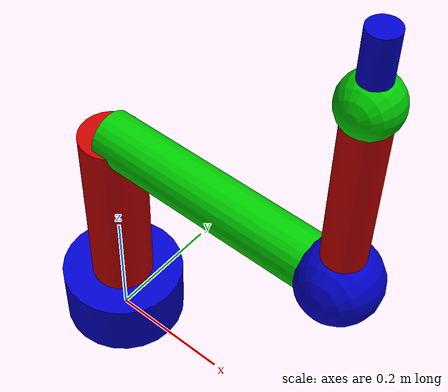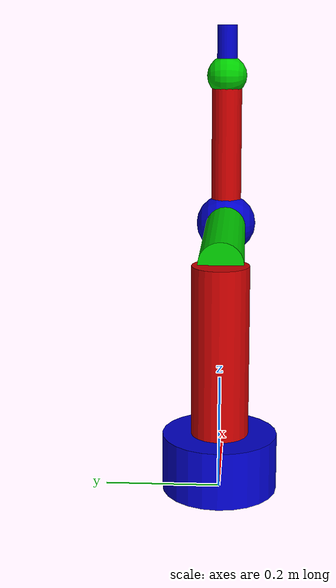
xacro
<?xml version="1.0"?>
<!--
  6_axis_arm.urdf.xacro

  6轴机械臂的机器人描述文件 (Xacro宏格式)。
-->
<robot name="6_axis_arm" xmlns:xacro="http://www.ros.org/wiki/xacro">

  <!--               材质              -->
  <material name="blue">
    <color rgba="0 0 0.8 1"/>
  </material>
  <material name="red">
    <color rgba="0.8 0 0 1"/>
  </material>
  <material name="green">
    <color rgba="0 0.8 0 1"/>
  </material>

  <!-- 用于修复 KDL 根节点惯性警告的虚拟连杆 -->
  <link name="world"/>
  <joint name="world_fixed" type="fixed">
    <parent link="world"/>
    <child link="base_link"/>
  </joint>

  <!--               连杆              -->

  <link name="base_link">
    <visual>
      <geometry>
        <cylinder length="0.1" radius="0.1"/>
      </geometry>
      <material name="blue"/>
      <origin xyz="0 0 0.05" rpy="0 0 0"/>
    </visual>
    <collision>
      <geometry>
        <cylinder length="0.1" radius="0.1"/>
      </geometry>
      <origin xyz="0 0 0.05" rpy="0 0 0"/>
    </collision>
    <inertial>
      <mass value="5.0"/>
      <origin xyz="0 0 0.05" rpy="0 0 0"/>
      <inertia ixx="0.016" ixy="0.0" ixz="0.0" iyy="0.016" iyz="0.0" izz="0.025"/>
    </inertial>
  </link>

  <link name="link_1">
    <visual>
      <geometry>
        <cylinder length="0.3" radius="0.05"/>
      </geometry>
      <material name="red"/>
      <origin xyz="0 0 0.15" rpy="0 0 0"/>
    </visual>
    <collision>
      <geometry>
        <cylinder length="0.3" radius="0.05"/>
      </geometry>
      <origin xyz="0 0 0.15" rpy="0 0 0"/>
    </collision>
    <inertial>
      <mass value="2.0"/>
      <origin xyz="0 0 0.15" rpy="0 0 0"/>
      <inertia ixx="0.016" ixy="0.0" ixz="0.0" iyy="0.016" iyz="0.0" izz="0.0025"/>
    </inertial>
  </link>

  <link name="link_2">
    <visual>
      <geometry>
        <cylinder length="0.4" radius="0.04"/>
      </geometry>
      <material name="green"/>
      <origin xyz="0.2 0 0" rpy="0 1.5708 0"/>
    </visual>
    <collision>
      <geometry>
        <cylinder length="0.4" radius="0.04"/>
      </geometry>
      <origin xyz="0.2 0 0" rpy="0 1.5708 0"/>
    </collision>
    <inertial>
      <mass value="1.5"/>
      <origin xyz="0.2 0 0" rpy="0 1.5708 0"/>
      <inertia ixx="0.0012" ixy="0.0" ixz="0.0" iyy="0.02" iyz="0.0" izz="0.02"/>
    </inertial>
  </link>

  <link name="link_3">
    <visual>
      <geometry>
        <sphere radius="0.06"/>
      </geometry>
      <material name="blue"/>
      <origin xyz="0 0 0" rpy="0 0 0"/>
    </visual>
    <collision>
      <geometry>
        <sphere radius="0.06"/>
      </geometry>
      <origin xyz="0 0 0" rpy="0 0 0"/>
    </collision>
    <inertial>
      <mass value="1.0"/>
      <origin xyz="0 0 0" rpy="0 0 0"/>
      <inertia ixx="0.0014" ixy="0.0" ixz="0.0" iyy="0.0014" iyz="0.0" izz="0.0014"/>
    </inertial>
  </link>

  <link name="link_4">
    <visual>
      <geometry>
        <cylinder length="0.3" radius="0.03"/>
      </geometry>
      <material name="red"/>
      <origin xyz="0 0 0.15" rpy="0 0 0"/>
    </visual>
    <collision>
      <geometry>
        <cylinder length="0.3" radius="0.03"/>
      </geometry>
      <origin xyz="0 0 0.15" rpy="0 0 0"/>
    </collision>
    <inertial>
      <mass value="0.8"/>
      <origin xyz="0 0 0.15" rpy="0 0 0"/>
      <inertia ixx="0.006" ixy="0.0" ixz="0.0" iyy="0.006" iyz="0.0" izz="0.0003"/>
    </inertial>
  </link>

  <link name="link_5">
    <visual>
      <geometry>
        <sphere radius="0.04"/>
      </geometry>
      <material name="green"/>
      <origin xyz="0 0 0" rpy="0 0 0"/>
    </visual>
    <collision>
      <geometry>
        <sphere radius="0.04"/>
      </geometry>
      <origin xyz="0 0 0" rpy="0 0 0"/>
    </collision>
    <inertial>
      <mass value="0.5"/>
      <origin xyz="0 0 0" rpy="0 0 0"/>
      <inertia ixx="0.0003" ixy="0.0" ixz="0.0" iyy="0.0003" iyz="0.0" izz="0.0003"/>
    </inertial>
  </link>

  <link name="link_6">
    <visual>
      <geometry>
        <cylinder length="0.1" radius="0.02"/>
      </geometry>
      <material name="blue"/>
      <origin xyz="0 0 0.05" rpy="0 0 0"/>
    </visual>
    <collision>
      <geometry>
        <cylinder length="0.1" radius="0.02"/>
      </geometry>
      <origin xyz="0 0 0.05" rpy="0 0 0"/>
    </collision>
    <inertial>
      <mass value="0.2"/>
      <origin xyz="0 0 0.05" rpy="0 0 0"/>
      <inertia ixx="0.0002" ixy="0.0" ixz="0.0" iyy="0.0002" iyz="0.0" izz="0.00004"/>
    </inertial>
  </link>

  <!--               关节              -->

  <joint name="joint_1" type="revolute">
    <parent link="base_link"/>
    <child link="link_1"/>
    <origin xyz="0 0 0.1" rpy="0 0 0"/>
    <axis xyz="0 0 1"/>
    <limit lower="-3.14" upper="3.14" effort="100.0" velocity="1.0"/>
    <dynamics damping="0.1" friction="0.1"/>
  </joint>

  <joint name="joint_2" type="revolute">
    <parent link="link_1"/>
    <child link="link_2"/>
    <origin xyz="0 0 0.3" rpy="-1.5708 0 0"/>
    <axis xyz="0 0 1"/>
    <limit lower="-2.0" upper="2.0" effort="100.0" velocity="1.0"/>
    <dynamics damping="0.1" friction="0.1"/>
  </joint>

  <joint name="joint_3" type="revolute">
    <parent link="link_2"/>
    <child link="link_3"/>
    <origin xyz="0.4 0 0" rpy="0 0 0"/>
    <axis xyz="0 0 1"/>
    <limit lower="-2.5" upper="2.5" effort="100.0" velocity="1.0"/>
    <dynamics damping="0.1" friction="0.1"/>
  </joint>

  <joint name="joint_4" type="revolute">
    <parent link="link_3"/>
    <child link="link_4"/>
    <origin xyz="0 0 0" rpy="1.5708 0 0"/>
    <axis xyz="0 0 1"/>
    <limit lower="-3.14" upper="3.14" effort="50.0" velocity="1.0"/>
    <dynamics damping="0.1" friction="0.1"/>
  </joint>

  <joint name="joint_5" type="revolute">
    <parent link="link_4"/>
    <child link="link_5"/>
    <origin xyz="0 0 0.3" rpy="-1.5708 0 0"/>
    <axis xyz="0 0 1"/>
    <limit lower="-2.0" upper="2.0" effort="50.0" velocity="1.0"/>
    <dynamics damping="0.1" friction="0.1"/>
  </joint>

  <joint name="joint_6" type="revolute">
    <parent link="link_5"/>
    <child link="link_6"/>
    <origin xyz="0 0 0" rpy="1.5708 0 0"/>
    <axis xyz="0 0 1"/>
    <limit lower="-3.14" upper="3.14" effort="20.0" velocity="1.0"/>
    <dynamics damping="0.1" friction="0.1"/>
  </joint>

  <!--        ROS2 控制接口            -->

  <ros2_control name="GazeboSimSystem" type="system">
    <hardware>
      <plugin>gz_ros2_control/GazeboSimSystem</plugin>
    </hardware>

    <joint name="joint_1">
      <command_interface name="position">
        <param name="min">-3.14</param>
        <param name="max">3.14</param>
      </command_interface>
      <state_interface name="position"/>
      <state_interface name="velocity"/>
      <state_interface name="effort"/>
    </joint>

    <joint name="joint_2">
      <command_interface name="position">
        <param name="min">-2.0</param>
        <param name="max">2.0</param>
      </command_interface>
      <state_interface name="position"/>
      <state_interface name="velocity"/>
      <state_interface name="effort"/>
    </joint>

    <joint name="joint_3">
      <command_interface name="position">
        <param name="min">-2.5</param>
        <param name="max">2.5</param>
      </command_interface>
      <state_interface name="position"/>
      <state_interface name="velocity"/>
      <state_interface name="effort"/>
    </joint>

    <joint name="joint_4">
      <command_interface name="position">
        <param name="min">-3.14</param>
        <param name="max">3.14</param>
      </command_interface>
      <state_interface name="position"/>
      <state_interface name="velocity"/>
      <state_interface name="effort"/>
    </joint>

    <joint name="joint_5">
      <command_interface name="position">
        <param name="min">-2.0</param>
        <param name="max">2.0</param>
      </command_interface>
      <state_interface name="position"/>
      <state_interface name="velocity"/>
      <state_interface name="effort"/>
    </joint>

    <joint name="joint_6">
      <command_interface name="position">
        <param name="min">-3.14</param>
        <param name="max">3.14</param>
      </command_interface>
      <state_interface name="position"/>
      <state_interface name="velocity"/>
      <state_interface name="effort"/>
    </joint>
  </ros2_control>

  <!--        GAZEBO 插件              -->

  <gazebo>
    <plugin filename="gz_ros2_control-system" name="gz_ros2_control::GazeboSimROS2ControlPlugin">
      <parameters>$(find robot_arm_demo)/config/controllers.yaml</parameters>
    </plugin>
  </gazebo>

</robot>
